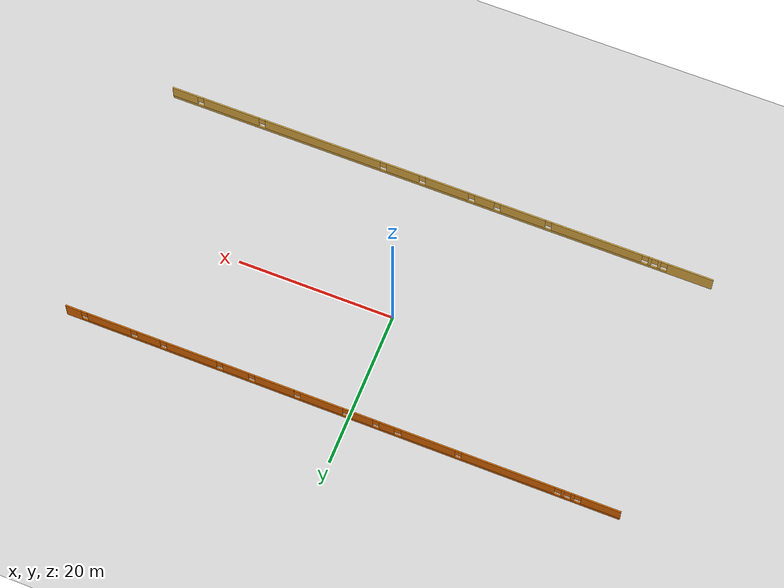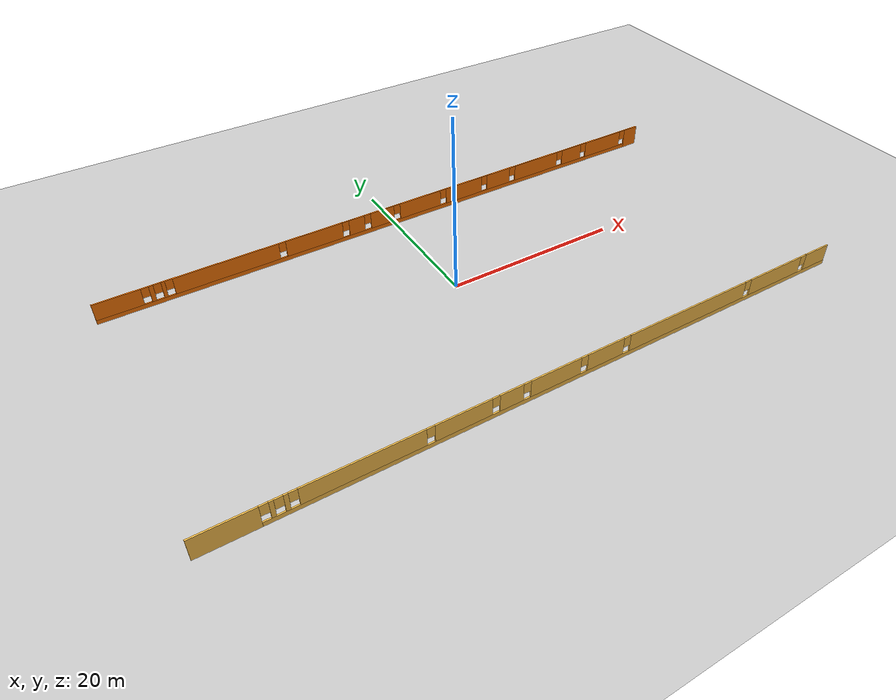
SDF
<sdf version="1.6">
 <world name="default">
  <model name="ground_plane">
   <static>1</static>
   <link name="link">
    <collision name="collision">
     <geometry><plane><normal>0 0 1</normal><size>100 100</size></plane></geometry>
     <surface>
      <contact><collide_bitmask>65535</collide_bitmask></contact>
      <friction><ode><mu>100</mu><mu2>50</mu2></ode></friction>
     </surface>
    </collision>
    <visual name="visual">
     <cast_shadows>0</cast_shadows>
     <geometry><plane><normal>0 0 1</normal><size>100 100</size></plane></geometry>
     <material>
      <script><uri>file://media/materials/scripts/gazebo.material</uri><name>Gazebo/Grey</name></script>
     </material>
    </visual>
   </link>
  </model>
  <model name="world">
   <pose>0.998 -1.93669 0 0 -0 0</pose>
   <link name="Wall_6">
    <pose>0.101225 -15.9369 0 0 -0 0</pose>
    <visual name="Wall_6_Visual_0">
     <pose>-32.4811 0 1.25 0 -0 0</pose>
     <geometry><box><size>5.78775 0.15 2.5</size></box></geometry>
     <material>
      <script><uri>file://media/materials/scripts/gazebo.material</uri><name>Gazebo/Grey</name></script>
      <ambient>1 0.764706 0.305882 1</ambient>
     </material>
     <meta><layer>0</layer></meta>
    </visual>
    <collision name="Wall_6_Collision_0">
     <geometry><box><size>5.78775 0.15 2.5</size></box></geometry>
     <pose>-32.4811 0 1.25 0 -0 0</pose>
    </collision>
    <visual name="Wall_6_Visual_1">
     <pose>2.89388 0 0.25 0 -0 0</pose>
     <geometry><box><size>64.9622 0.15 0.5</size></box></geometry>
     <material>
      <script><uri>file://media/materials/scripts/gazebo.material</uri><name>Gazebo/Grey</name></script>
      <ambient>1 0.764706 0.305882 1</ambient>
     </material>
     <meta><layer>0</layer></meta>
    </visual>
    <collision name="Wall_6_Collision_1">
     <geometry><box><size>64.9622 0.15 0.5</size></box></geometry>
     <pose>2.89388 0 0.25 0 -0 0</pose>
    </collision>
    <visual name="Wall_6_Visual_2">
     <pose>-28.5804 0 1.5 0 -0 0</pose>
     <geometry><box><size>0.413667 0.15 2</size></box></geometry>
     <material>
      <script><uri>file://media/materials/scripts/gazebo.material</uri><name>Gazebo/Grey</name></script>
      <ambient>1 0.764706 0.305882 1</ambient>
     </material>
     <meta><layer>0</layer></meta>
    </visual>
    <collision name="Wall_6_Collision_2">
     <geometry><box><size>0.413667 0.15 2</size></box></geometry>
     <pose>-28.5804 0 1.5 0 -0 0</pose>
    </collision>
    <visual name="Wall_6_Visual_3">
     <pose>-27.3667 0 1.5 0 -0 0</pose>
     <geometry><box><size>0.413667 0.15 2</size></box></geometry>
     <material>
      <script><uri>file://media/materials/scripts/gazebo.material</uri><name>Gazebo/Grey</name></script>
      <ambient>1 0.764706 0.305882 1</ambient>
     </material>
     <meta><layer>0</layer></meta>
    </visual>
    <collision name="Wall_6_Collision_3">
     <geometry><box><size>0.413667 0.15 2</size></box></geometry>
     <pose>-27.3667 0 1.5 0 -0 0</pose>
    </collision>
    <visual name="Wall_6_Visual_4">
     <pose>-20.5298 0 1.5 0 -0 0</pose>
     <geometry><box><size>11.6603 0.15 2</size></box></geometry>
     <material>
      <script><uri>file://media/materials/scripts/gazebo.material</uri><name>Gazebo/Grey</name></script>
      <ambient>1 0.764706 0.305882 1</ambient>
     </material>
     <meta><layer>0</layer></meta>
    </visual>
    <collision name="Wall_6_Collision_4">
     <geometry><box><size>11.6603 0.15 2</size></box></geometry>
     <pose>-20.5298 0 1.5 0 -0 0</pose>
    </collision>
    <visual name="Wall_6_Visual_5">
     <pose>-10.9822 0 1.5 0 -0 0</pose>
     <geometry><box><size>5.83472 0.15 2</size></box></geometry>
     <material>
      <script><uri>file://media/materials/scripts/gazebo.material</uri><name>Gazebo/Grey</name></script>
      <ambient>1 0.764706 0.305882 1</ambient>
     </material>
     <meta><layer>0</layer></meta>
    </visual>
    <collision name="Wall_6_Collision_5">
     <geometry><box><size>5.83472 0.15 2</size></box></geometry>
     <pose>-10.9822 0 1.5 0 -0 0</pose>
    </collision>
    <visual name="Wall_6_Visual_6">
     <pose>-5.99726 0 1.5 0 -0 0</pose>
     <geometry><box><size>2.53524 0.15 2</size></box></geometry>
     <material>
      <script><uri>file://media/materials/scripts/gazebo.material</uri><name>Gazebo/Grey</name></script>
      <ambient>1 0.764706 0.305882 1</ambient>
     </material>
     <meta><layer>0</layer></meta>
    </visual>
    <collision name="Wall_6_Collision_6">
     <geometry><box><size>2.53524 0.15 2</size></box></geometry>
     <pose>-5.99726 0 1.5 0 -0 0</pose>
    </collision>
    <visual name="Wall_6_Visual_7">
     <pose>-1.09549 0 1.5 0 -0 0</pose>
     <geometry><box><size>5.66831 0.15 2</size></box></geometry>
     <material>
      <script><uri>file://media/materials/scripts/gazebo.material</uri><name>Gazebo/Grey</name></script>
      <ambient>1 0.764706 0.305882 1</ambient>
     </material>
     <meta><layer>0</layer></meta>
    </visual>
    <collision name="Wall_6_Collision_7">
     <geometry><box><size>5.66831 0.15 2</size></box></geometry>
     <pose>-1.09549 0 1.5 0 -0 0</pose>
    </collision>
    <visual name="Wall_6_Visual_8">
     <pose>4.69748 0 1.5 0 -0 0</pose>
     <geometry><box><size>4.31763 0.15 2</size></box></geometry>
     <material>
      <script><uri>file://media/materials/scripts/gazebo.material</uri><name>Gazebo/Grey</name></script>
      <ambient>1 0.764706 0.305882 1</ambient>
     </material>
     <meta><layer>0</layer></meta>
    </visual>
    <collision name="Wall_6_Collision_8">
     <geometry><box><size>4.31763 0.15 2</size></box></geometry>
     <pose>4.69748 0 1.5 0 -0 0</pose>
    </collision>
    <visual name="Wall_6_Visual_9">
     <pose>15.3167 0 1.5 0 -0 0</pose>
     <geometry><box><size>15.3208 0.15 2</size></box></geometry>
     <material>
      <script><uri>file://media/materials/scripts/gazebo.material</uri><name>Gazebo/Grey</name></script>
      <ambient>1 0.764706 0.305882 1</ambient>
     </material>
     <meta><layer>0</layer></meta>
    </visual>
    <collision name="Wall_6_Collision_9">
     <geometry><box><size>15.3208 0.15 2</size></box></geometry>
     <pose>15.3167 0 1.5 0 -0 0</pose>
    </collision>
    <visual name="Wall_6_Visual_10">
     <pose>27.4964 0 1.5 0 -0 0</pose>
     <geometry><box><size>7.43877 0.15 2</size></box></geometry>
     <material>
      <script><uri>file://media/materials/scripts/gazebo.material</uri><name>Gazebo/Grey</name></script>
      <ambient>1 0.764706 0.305882 1</ambient>
     </material>
     <meta><layer>0</layer></meta>
    </visual>
    <collision name="Wall_6_Collision_10">
     <geometry><box><size>7.43877 0.15 2</size></box></geometry>
     <pose>27.4964 0 1.5 0 -0 0</pose>
    </collision>
    <visual name="Wall_6_Visual_11">
     <pose>33.6954 0 1.5 0 -0 0</pose>
     <geometry><box><size>3.35917 0.15 2</size></box></geometry>
     <material>
      <script><uri>file://media/materials/scripts/gazebo.material</uri><name>Gazebo/Grey</name></script>
      <ambient>1 0.764706 0.305882 1</ambient>
     </material>
     <meta><layer>0</layer></meta>
    </visual>
    <collision name="Wall_6_Collision_11">
     <geometry><box><size>3.35917 0.15 2</size></box></geometry>
     <pose>33.6954 0 1.5 0 -0 0</pose>
    </collision>
    <visual name="Wall_6_Visual_12">
     <pose>-29.1872 0 1.9 0 -0 0</pose>
     <geometry><box><size>0.8 0.15 1.2</size></box></geometry>
     <material>
      <script><uri>file://media/materials/scripts/gazebo.material</uri><name>Gazebo/Grey</name></script>
      <ambient>1 0.764706 0.305882 1</ambient>
     </material>
     <meta><layer>0</layer></meta>
    </visual>
    <collision name="Wall_6_Collision_12">
     <geometry><box><size>0.8 0.15 1.2</size></box></geometry>
     <pose>-29.1872 0 1.9 0 -0 0</pose>
    </collision>
    <visual name="Wall_6_Visual_13">
     <pose>-27.9736 0 1.9 0 -0 0</pose>
     <geometry><box><size>0.8 0.15 1.2</size></box></geometry>
     <material>
      <script><uri>file://media/materials/scripts/gazebo.material</uri><name>Gazebo/Grey</name></script>
      <ambient>1 0.764706 0.305882 1</ambient>
     </material>
     <meta><layer>0</layer></meta>
    </visual>
    <collision name="Wall_6_Collision_13">
     <geometry><box><size>0.8 0.15 1.2</size></box></geometry>
     <pose>-27.9736 0 1.9 0 -0 0</pose>
    </collision>
    <visual name="Wall_6_Visual_14">
     <pose>-26.7599 0 1.9 0 -0 0</pose>
     <geometry><box><size>0.8 0.15 1.2</size></box></geometry>
     <material>
      <script><uri>file://media/materials/scripts/gazebo.material</uri><name>Gazebo/Grey</name></script>
      <ambient>1 0.764706 0.305882 1</ambient>
     </material>
     <meta><layer>0</layer></meta>
    </visual>
    <collision name="Wall_6_Collision_14">
     <geometry><box><size>0.8 0.15 1.2</size></box></geometry>
     <pose>-26.7599 0 1.9 0 -0 0</pose>
    </collision>
    <visual name="Wall_6_Visual_15">
     <pose>-14.2996 0 1.9 0 -0 0</pose>
     <geometry><box><size>0.8 0.15 1.2</size></box></geometry>
     <material>
      <script><uri>file://media/materials/scripts/gazebo.material</uri><name>Gazebo/Grey</name></script>
      <ambient>1 0.764706 0.305882 1</ambient>
     </material>
     <meta><layer>0</layer></meta>
    </visual>
    <collision name="Wall_6_Collision_15">
     <geometry><box><size>0.8 0.15 1.2</size></box></geometry>
     <pose>-14.2996 0 1.9 0 -0 0</pose>
    </collision>
    <visual name="Wall_6_Visual_16">
     <pose>-7.66488 0 1.9 0 -0 0</pose>
     <geometry><box><size>0.8 0.15 1.2</size></box></geometry>
     <material>
      <script><uri>file://media/materials/scripts/gazebo.material</uri><name>Gazebo/Grey</name></script>
      <ambient>1 0.764706 0.305882 1</ambient>
     </material>
     <meta><layer>0</layer></meta>
    </visual>
    <collision name="Wall_6_Collision_16">
     <geometry><box><size>0.8 0.15 1.2</size></box></geometry>
     <pose>-7.66488 0 1.9 0 -0 0</pose>
    </collision>
    <visual name="Wall_6_Visual_17">
     <pose>-4.32964 0 1.9 0 -0 0</pose>
     <geometry><box><size>0.8 0.15 1.2</size></box></geometry>
     <material>
      <script><uri>file://media/materials/scripts/gazebo.material</uri><name>Gazebo/Grey</name></script>
      <ambient>1 0.764706 0.305882 1</ambient>
     </material>
     <meta><layer>0</layer></meta>
    </visual>
    <collision name="Wall_6_Collision_17">
     <geometry><box><size>0.8 0.15 1.2</size></box></geometry>
     <pose>-4.32964 0 1.9 0 -0 0</pose>
    </collision>
    <visual name="Wall_6_Visual_18">
     <pose>2.13867 0 1.9 0 -0 0</pose>
     <geometry><box><size>0.8 0.15 1.2</size></box></geometry>
     <material>
      <script><uri>file://media/materials/scripts/gazebo.material</uri><name>Gazebo/Grey</name></script>
      <ambient>1 0.764706 0.305882 1</ambient>
     </material>
     <meta><layer>0</layer></meta>
    </visual>
    <collision name="Wall_6_Collision_18">
     <geometry><box><size>0.8 0.15 1.2</size></box></geometry>
     <pose>2.13867 0 1.9 0 -0 0</pose>
    </collision>
    <visual name="Wall_6_Visual_19">
     <pose>7.2563 0 1.9 0 -0 0</pose>
     <geometry><box><size>0.8 0.15 1.2</size></box></geometry>
     <material>
      <script><uri>file://media/materials/scripts/gazebo.material</uri><name>Gazebo/Grey</name></script>
      <ambient>1 0.764706 0.305882 1</ambient>
     </material>
     <meta><layer>0</layer></meta>
    </visual>
    <collision name="Wall_6_Collision_19">
     <geometry><box><size>0.8 0.15 1.2</size></box></geometry>
     <pose>7.2563 0 1.9 0 -0 0</pose>
    </collision>
    <visual name="Wall_6_Visual_20">
     <pose>23.3771 0 1.9 0 -0 0</pose>
     <geometry><box><size>0.8 0.15 1.2</size></box></geometry>
     <material>
      <script><uri>file://media/materials/scripts/gazebo.material</uri><name>Gazebo/Grey</name></script>
      <ambient>1 0.764706 0.305882 1</ambient>
     </material>
     <meta><layer>0</layer></meta>
    </visual>
    <collision name="Wall_6_Collision_20">
     <geometry><box><size>0.8 0.15 1.2</size></box></geometry>
     <pose>23.3771 0 1.9 0 -0 0</pose>
    </collision>
    <visual name="Wall_6_Visual_21">
     <pose>31.6158 0 1.9 0 -0 0</pose>
     <geometry><box><size>0.8 0.15 1.2</size></box></geometry>
     <material>
      <script><uri>file://media/materials/scripts/gazebo.material</uri><name>Gazebo/Grey</name></script>
      <ambient>1 0.764706 0.305882 1</ambient>
     </material>
     <meta><layer>0</layer></meta>
    </visual>
    <collision name="Wall_6_Collision_21">
     <geometry><box><size>0.8 0.15 1.2</size></box></geometry>
     <pose>31.6158 0 1.9 0 -0 0</pose>
    </collision>
   </link>
   <link name="Wall_8">
    <pose>0.226225 15.9131 0 0 -0 3.14159</pose>
    <visual name="Wall_8_Visual_0">
     <pose>-34.2388 0 1.25 0 -0 0</pose>
     <geometry><box><size>2.02248 0.15 2.5</size></box></geometry>
     <material>
      <script><uri>file://media/materials/scripts/gazebo.material</uri><name>Gazebo/Grey</name></script>
      <ambient>0.996078 0.47451 0.0196078 1</ambient>
     </material>
     <meta><layer>0</layer></meta>
    </visual>
    <collision name="Wall_8_Collision_0">
     <geometry><box><size>2.02248 0.15 2.5</size></box></geometry>
     <pose>-34.2388 0 1.25 0 -0 0</pose>
    </collision>
    <visual name="Wall_8_Visual_1">
     <pose>1.01124 0 0.25 0 -0 0</pose>
     <geometry><box><size>68.4775 0.15 0.5</size></box></geometry>
     <material>
      <script><uri>file://media/materials/scripts/gazebo.material</uri><name>Gazebo/Grey</name></script>
      <ambient>0.996078 0.47451 0.0196078 1</ambient>
     </material>
     <meta><layer>0</layer></meta>
    </visual>
    <collision name="Wall_8_Collision_1">
     <geometry><box><size>68.4775 0.15 0.5</size></box></geometry>
     <pose>1.01124 0 0.25 0 -0 0</pose>
    </collision>
    <visual name="Wall_8_Visual_2">
     <pose>-29.5911 0 1.5 0 -0 0</pose>
     <geometry><box><size>5.67289 0.15 2</size></box></geometry>
     <material>
      <script><uri>file://media/materials/scripts/gazebo.material</uri><name>Gazebo/Grey</name></script>
      <ambient>0.996078 0.47451 0.0196078 1</ambient>
     </material>
     <meta><layer>0</layer></meta>
    </visual>
    <collision name="Wall_8_Collision_2">
     <geometry><box><size>5.67289 0.15 2</size></box></geometry>
     <pose>-29.5911 0 1.5 0 -0 0</pose>
    </collision>
    <visual name="Wall_8_Visual_3">
     <pose>-24.4532 0 1.5 0 -0 0</pose>
     <geometry><box><size>3.00282 0.15 2</size></box></geometry>
     <material>
      <script><uri>file://media/materials/scripts/gazebo.material</uri><name>Gazebo/Grey</name></script>
      <ambient>0.996078 0.47451 0.0196078 1</ambient>
     </material>
     <meta><layer>0</layer></meta>
    </visual>
    <collision name="Wall_8_Collision_3">
     <geometry><box><size>3.00282 0.15 2</size></box></geometry>
     <pose>-24.4532 0 1.5 0 -0 0</pose>
    </collision>
    <visual name="Wall_8_Visual_4">
     <pose>-18.9108 0 1.5 0 -0 0</pose>
     <geometry><box><size>6.482 0.15 2</size></box></geometry>
     <material>
      <script><uri>file://media/materials/scripts/gazebo.material</uri><name>Gazebo/Grey</name></script>
      <ambient>0.996078 0.47451 0.0196078 1</ambient>
     </material>
     <meta><layer>0</layer></meta>
    </visual>
    <collision name="Wall_8_Collision_4">
     <geometry><box><size>6.482 0.15 2</size></box></geometry>
     <pose>-18.9108 0 1.5 0 -0 0</pose>
    </collision>
    <visual name="Wall_8_Visual_5">
     <pose>-13.2066 0 1.5 0 -0 0</pose>
     <geometry><box><size>3.32647 0.15 2</size></box></geometry>
     <material>
      <script><uri>file://media/materials/scripts/gazebo.material</uri><name>Gazebo/Grey</name></script>
      <ambient>0.996078 0.47451 0.0196078 1</ambient>
     </material>
     <meta><layer>0</layer></meta>
    </visual>
    <collision name="Wall_8_Collision_5">
     <geometry><box><size>3.32647 0.15 2</size></box></geometry>
     <pose>-13.2066 0 1.5 0 -0 0</pose>
    </collision>
    <visual name="Wall_8_Visual_6">
     <pose>-8.23053 0 1.5 0 -0 0</pose>
     <geometry><box><size>5.0256 0.15 2</size></box></geometry>
     <material>
      <script><uri>file://media/materials/scripts/gazebo.material</uri><name>Gazebo/Grey</name></script>
      <ambient>0.996078 0.47451 0.0196078 1</ambient>
     </material>
     <meta><layer>0</layer></meta>
    </visual>
    <collision name="Wall_8_Collision_6">
     <geometry><box><size>5.0256 0.15 2</size></box></geometry>
     <pose>-8.23053 0 1.5 0 -0 0</pose>
    </collision>
    <visual name="Wall_8_Visual_7">
     <pose>-2.20265 0 1.5 0 -0 0</pose>
     <geometry><box><size>5.43016 0.15 2</size></box></geometry>
     <material>
      <script><uri>file://media/materials/scripts/gazebo.material</uri><name>Gazebo/Grey</name></script>
      <ambient>0.996078 0.47451 0.0196078 1</ambient>
     </material>
     <meta><layer>0</layer></meta>
    </visual>
    <collision name="Wall_8_Collision_7">
     <geometry><box><size>5.43016 0.15 2</size></box></geometry>
     <pose>-2.20265 0 1.5 0 -0 0</pose>
    </collision>
    <visual name="Wall_8_Visual_8">
     <pose>2.81385 0 1.5 0 -0 0</pose>
     <geometry><box><size>3.00282 0.15 2</size></box></geometry>
     <material>
      <script><uri>file://media/materials/scripts/gazebo.material</uri><name>Gazebo/Grey</name></script>
      <ambient>0.996078 0.47451 0.0196078 1</ambient>
     </material>
     <meta><layer>0</layer></meta>
    </visual>
    <collision name="Wall_8_Collision_8">
     <geometry><box><size>3.00282 0.15 2</size></box></geometry>
     <pose>2.81385 0 1.5 0 -0 0</pose>
    </collision>
    <visual name="Wall_8_Visual_9">
     <pose>6.09075 0 1.5 0 -0 0</pose>
     <geometry><box><size>1.95098 0.15 2</size></box></geometry>
     <material>
      <script><uri>file://media/materials/scripts/gazebo.material</uri><name>Gazebo/Grey</name></script>
      <ambient>0.996078 0.47451 0.0196078 1</ambient>
     </material>
     <meta><layer>0</layer></meta>
    </visual>
    <collision name="Wall_8_Collision_9">
     <geometry><box><size>1.95098 0.15 2</size></box></geometry>
     <pose>6.09075 0 1.5 0 -0 0</pose>
    </collision>
    <visual name="Wall_8_Visual_10">
     <pose>11.2691 0 1.5 0 -0 0</pose>
     <geometry><box><size>6.80565 0.15 2</size></box></geometry>
     <material>
      <script><uri>file://media/materials/scripts/gazebo.material</uri><name>Gazebo/Grey</name></script>
      <ambient>0.996078 0.47451 0.0196078 1</ambient>
     </material>
     <meta><layer>0</layer></meta>
    </visual>
    <collision name="Wall_8_Collision_10">
     <geometry><box><size>6.80565 0.15 2</size></box></geometry>
     <pose>11.2691 0 1.5 0 -0 0</pose>
    </collision>
    <visual name="Wall_8_Visual_11">
     <pose>21.2909 0 1.5 0 -0 0</pose>
     <geometry><box><size>11.6381 0.15 2</size></box></geometry>
     <material>
      <script><uri>file://media/materials/scripts/gazebo.material</uri><name>Gazebo/Grey</name></script>
      <ambient>0.996078 0.47451 0.0196078 1</ambient>
     </material>
     <meta><layer>0</layer></meta>
    </visual>
    <collision name="Wall_8_Collision_11">
     <geometry><box><size>11.6381 0.15 2</size></box></geometry>
     <pose>21.2909 0 1.5 0 -0 0</pose>
    </collision>
    <visual name="Wall_8_Visual_12">
     <pose>28.108 0 1.5 0 -0 0</pose>
     <geometry><box><size>0.396077 0.15 2</size></box></geometry>
     <material>
      <script><uri>file://media/materials/scripts/gazebo.material</uri><name>Gazebo/Grey</name></script>
      <ambient>0.996078 0.47451 0.0196078 1</ambient>
     </material>
     <meta><layer>0</layer></meta>
    </visual>
    <collision name="Wall_8_Collision_12">
     <geometry><box><size>0.396077 0.15 2</size></box></geometry>
     <pose>28.108 0 1.5 0 -0 0</pose>
    </collision>
    <visual name="Wall_8_Visual_13">
     <pose>29.3393 0 1.5 0 -0 0</pose>
     <geometry><box><size>0.466436 0.15 2</size></box></geometry>
     <material>
      <script><uri>file://media/materials/scripts/gazebo.material</uri><name>Gazebo/Grey</name></script>
      <ambient>0.996078 0.47451 0.0196078 1</ambient>
     </material>
     <meta><layer>0</layer></meta>
    </visual>
    <collision name="Wall_8_Collision_13">
     <geometry><box><size>0.466436 0.15 2</size></box></geometry>
     <pose>29.3393 0 1.5 0 -0 0</pose>
    </collision>
    <visual name="Wall_8_Visual_14">
     <pose>32.8113 0 1.5 0 -0 0</pose>
     <geometry><box><size>4.87747 0.15 2</size></box></geometry>
     <material>
      <script><uri>file://media/materials/scripts/gazebo.material</uri><name>Gazebo/Grey</name></script>
      <ambient>0.996078 0.47451 0.0196078 1</ambient>
     </material>
     <meta><layer>0</layer></meta>
    </visual>
    <collision name="Wall_8_Collision_14">
     <geometry><box><size>4.87747 0.15 2</size></box></geometry>
     <pose>32.8113 0 1.5 0 -0 0</pose>
    </collision>
    <visual name="Wall_8_Visual_15">
     <pose>-32.8275 0 1.9 0 -0 0</pose>
     <geometry><box><size>0.8 0.15 1.2</size></box></geometry>
     <material>
      <script><uri>file://media/materials/scripts/gazebo.material</uri><name>Gazebo/Grey</name></script>
      <ambient>0.996078 0.47451 0.0196078 1</ambient>
     </material>
     <meta><layer>0</layer></meta>
    </visual>
    <collision name="Wall_8_Collision_15">
     <geometry><box><size>0.8 0.15 1.2</size></box></geometry>
     <pose>-32.8275 0 1.9 0 -0 0</pose>
    </collision>
    <visual name="Wall_8_Visual_16">
     <pose>-26.3546 0 1.9 0 -0 0</pose>
     <geometry><box><size>0.8 0.15 1.2</size></box></geometry>
     <material>
      <script><uri>file://media/materials/scripts/gazebo.material</uri><name>Gazebo/Grey</name></script>
      <ambient>0.996078 0.47451 0.0196078 1</ambient>
     </material>
     <meta><layer>0</layer></meta>
    </visual>
    <collision name="Wall_8_Collision_16">
     <geometry><box><size>0.8 0.15 1.2</size></box></geometry>
     <pose>-26.3546 0 1.9 0 -0 0</pose>
    </collision>
    <visual name="Wall_8_Visual_17">
     <pose>-22.5518 0 1.9 0 -0 0</pose>
     <geometry><box><size>0.8 0.15 1.2</size></box></geometry>
     <material>
      <script><uri>file://media/materials/scripts/gazebo.material</uri><name>Gazebo/Grey</name></script>
      <ambient>0.996078 0.47451 0.0196078 1</ambient>
     </material>
     <meta><layer>0</layer></meta>
    </visual>
    <collision name="Wall_8_Collision_17">
     <geometry><box><size>0.8 0.15 1.2</size></box></geometry>
     <pose>-22.5518 0 1.9 0 -0 0</pose>
    </collision>
    <visual name="Wall_8_Visual_18">
     <pose>-15.2698 0 1.9 0 -0 0</pose>
     <geometry><box><size>0.8 0.15 1.2</size></box></geometry>
     <material>
      <script><uri>file://media/materials/scripts/gazebo.material</uri><name>Gazebo/Grey</name></script>
      <ambient>0.996078 0.47451 0.0196078 1</ambient>
     </material>
     <meta><layer>0</layer></meta>
    </visual>
    <collision name="Wall_8_Collision_18">
     <geometry><box><size>0.8 0.15 1.2</size></box></geometry>
     <pose>-15.2698 0 1.9 0 -0 0</pose>
    </collision>
    <visual name="Wall_8_Visual_19">
     <pose>-11.1433 0 1.9 0 -0 0</pose>
     <geometry><box><size>0.8 0.15 1.2</size></box></geometry>
     <material>
      <script><uri>file://media/materials/scripts/gazebo.material</uri><name>Gazebo/Grey</name></script>
      <ambient>0.996078 0.47451 0.0196078 1</ambient>
     </material>
     <meta><layer>0</layer></meta>
    </visual>
    <collision name="Wall_8_Collision_19">
     <geometry><box><size>0.8 0.15 1.2</size></box></geometry>
     <pose>-11.1433 0 1.9 0 -0 0</pose>
    </collision>
    <visual name="Wall_8_Visual_20">
     <pose>-5.31773 0 1.9 0 -0 0</pose>
     <geometry><box><size>0.8 0.15 1.2</size></box></geometry>
     <material>
      <script><uri>file://media/materials/scripts/gazebo.material</uri><name>Gazebo/Grey</name></script>
      <ambient>0.996078 0.47451 0.0196078 1</ambient>
     </material>
     <meta><layer>0</layer></meta>
    </visual>
    <collision name="Wall_8_Collision_20">
     <geometry><box><size>0.8 0.15 1.2</size></box></geometry>
     <pose>-5.31773 0 1.9 0 -0 0</pose>
    </collision>
    <visual name="Wall_8_Visual_21">
     <pose>0.912433 0 1.9 0 -0 0</pose>
     <geometry><box><size>0.8 0.15 1.2</size></box></geometry>
     <material>
      <script><uri>file://media/materials/scripts/gazebo.material</uri><name>Gazebo/Grey</name></script>
      <ambient>0.996078 0.47451 0.0196078 1</ambient>
     </material>
     <meta><layer>0</layer></meta>
    </visual>
    <collision name="Wall_8_Collision_21">
     <geometry><box><size>0.8 0.15 1.2</size></box></geometry>
     <pose>0.912433 0 1.9 0 -0 0</pose>
    </collision>
    <visual name="Wall_8_Visual_22">
     <pose>4.71526 0 1.9 0 -0 0</pose>
     <geometry><box><size>0.8 0.15 1.2</size></box></geometry>
     <material>
      <script><uri>file://media/materials/scripts/gazebo.material</uri><name>Gazebo/Grey</name></script>
      <ambient>0.996078 0.47451 0.0196078 1</ambient>
     </material>
     <meta><layer>0</layer></meta>
    </visual>
    <collision name="Wall_8_Collision_22">
     <geometry><box><size>0.8 0.15 1.2</size></box></geometry>
     <pose>4.71526 0 1.9 0 -0 0</pose>
    </collision>
    <visual name="Wall_8_Visual_23">
     <pose>7.46624 0 1.9 0 -0 0</pose>
     <geometry><box><size>0.8 0.15 1.2</size></box></geometry>
     <material>
      <script><uri>file://media/materials/scripts/gazebo.material</uri><name>Gazebo/Grey</name></script>
      <ambient>0.996078 0.47451 0.0196078 1</ambient>
     </material>
     <meta><layer>0</layer></meta>
    </visual>
    <collision name="Wall_8_Collision_23">
     <geometry><box><size>0.8 0.15 1.2</size></box></geometry>
     <pose>7.46624 0 1.9 0 -0 0</pose>
    </collision>
    <visual name="Wall_8_Visual_24">
     <pose>15.0719 0 1.9 0 -0 0</pose>
     <geometry><box><size>0.8 0.15 1.2</size></box></geometry>
     <material>
      <script><uri>file://media/materials/scripts/gazebo.material</uri><name>Gazebo/Grey</name></script>
      <ambient>0.996078 0.47451 0.0196078 1</ambient>
     </material>
     <meta><layer>0</layer></meta>
    </visual>
    <collision name="Wall_8_Collision_24">
     <geometry><box><size>0.8 0.15 1.2</size></box></geometry>
     <pose>15.0719 0 1.9 0 -0 0</pose>
    </collision>
    <visual name="Wall_8_Visual_25">
     <pose>27.51 0 1.9 0 -0 0</pose>
     <geometry><box><size>0.8 0.15 1.2</size></box></geometry>
     <material>
      <script><uri>file://media/materials/scripts/gazebo.material</uri><name>Gazebo/Grey</name></script>
      <ambient>0.996078 0.47451 0.0196078 1</ambient>
     </material>
     <meta><layer>0</layer></meta>
    </visual>
    <collision name="Wall_8_Collision_25">
     <geometry><box><size>0.8 0.15 1.2</size></box></geometry>
     <pose>27.51 0 1.9 0 -0 0</pose>
    </collision>
    <visual name="Wall_8_Visual_26">
     <pose>28.7061 0 1.9 0 -0 0</pose>
     <geometry><box><size>0.8 0.15 1.2</size></box></geometry>
     <material>
      <script><uri>file://media/materials/scripts/gazebo.material</uri><name>Gazebo/Grey</name></script>
      <ambient>0.996078 0.47451 0.0196078 1</ambient>
     </material>
     <meta><layer>0</layer></meta>
    </visual>
    <collision name="Wall_8_Collision_26">
     <geometry><box><size>0.8 0.15 1.2</size></box></geometry>
     <pose>28.7061 0 1.9 0 -0 0</pose>
    </collision>
    <visual name="Wall_8_Visual_27">
     <pose>29.9725 0 1.9 0 -0 0</pose>
     <geometry><box><size>0.8 0.15 1.2</size></box></geometry>
     <material>
      <script><uri>file://media/materials/scripts/gazebo.material</uri><name>Gazebo/Grey</name></script>
      <ambient>0.996078 0.47451 0.0196078 1</ambient>
     </material>
     <meta><layer>0</layer></meta>
    </visual>
    <collision name="Wall_8_Collision_27">
     <geometry><box><size>0.8 0.15 1.2</size></box></geometry>
     <pose>29.9725 0 1.9 0 -0 0</pose>
    </collision>
   </link>
   <static>1</static>
  </model>
 </world>
</sdf>
